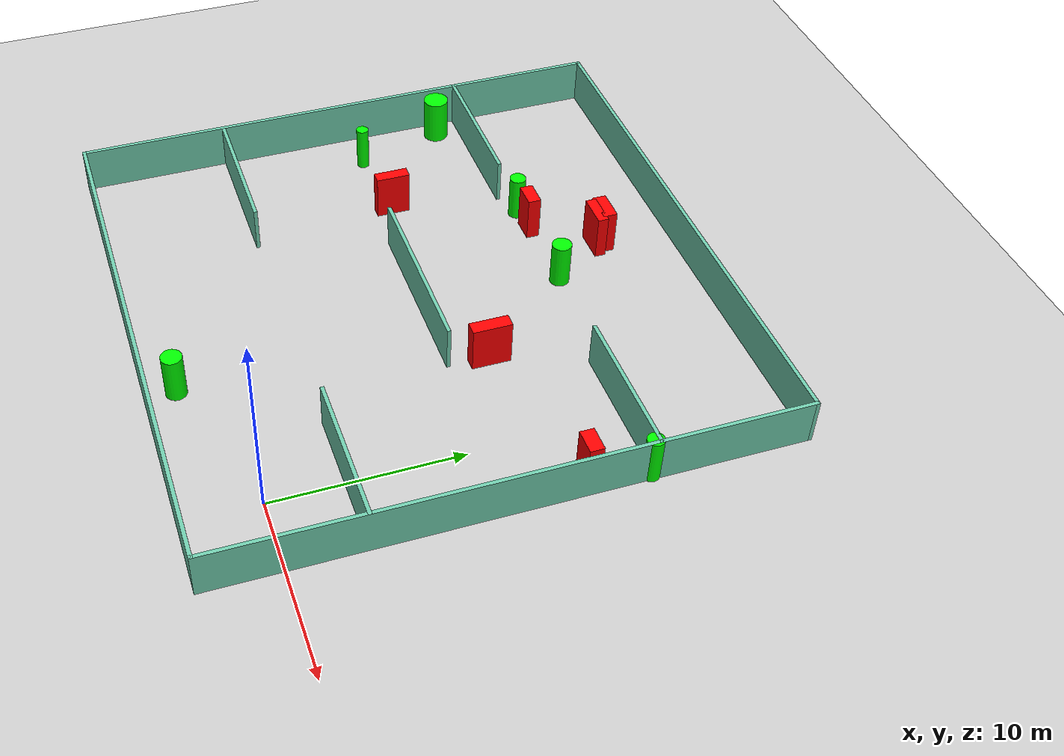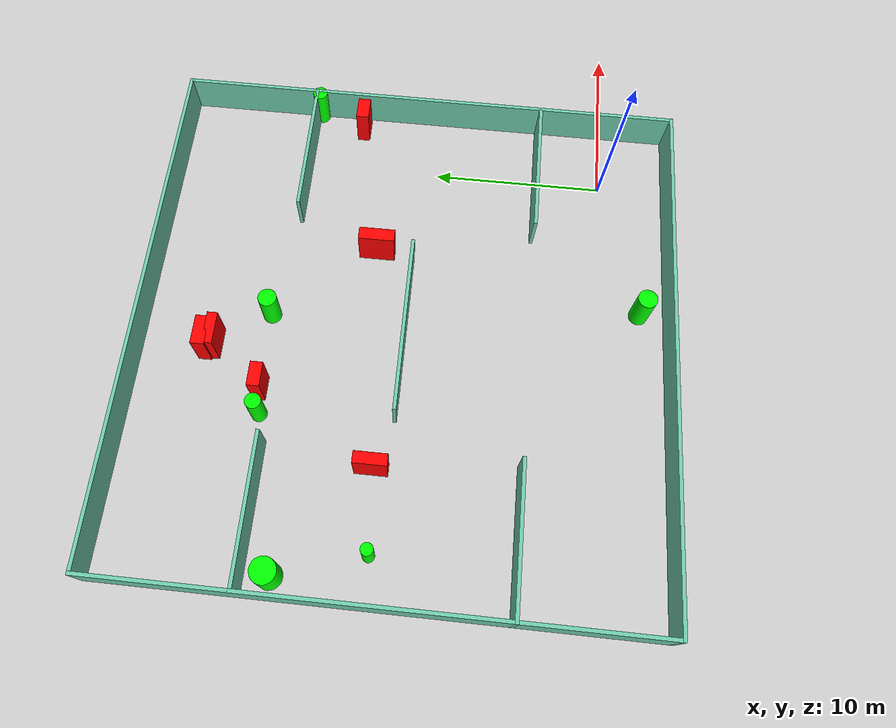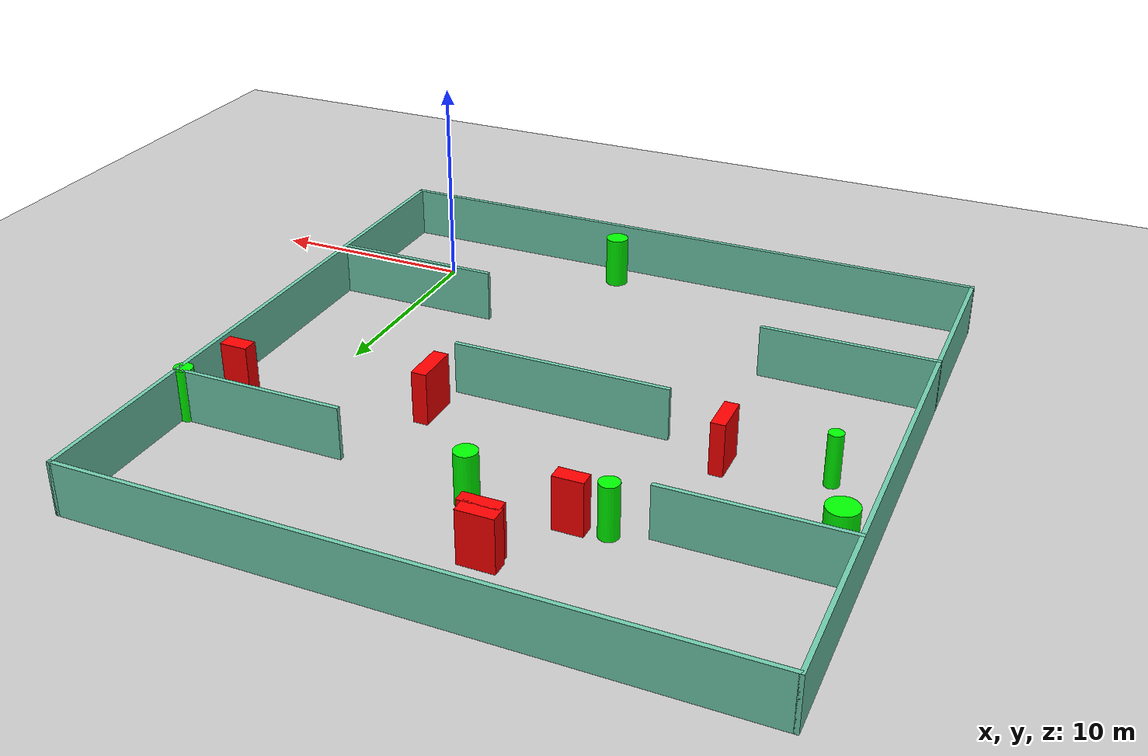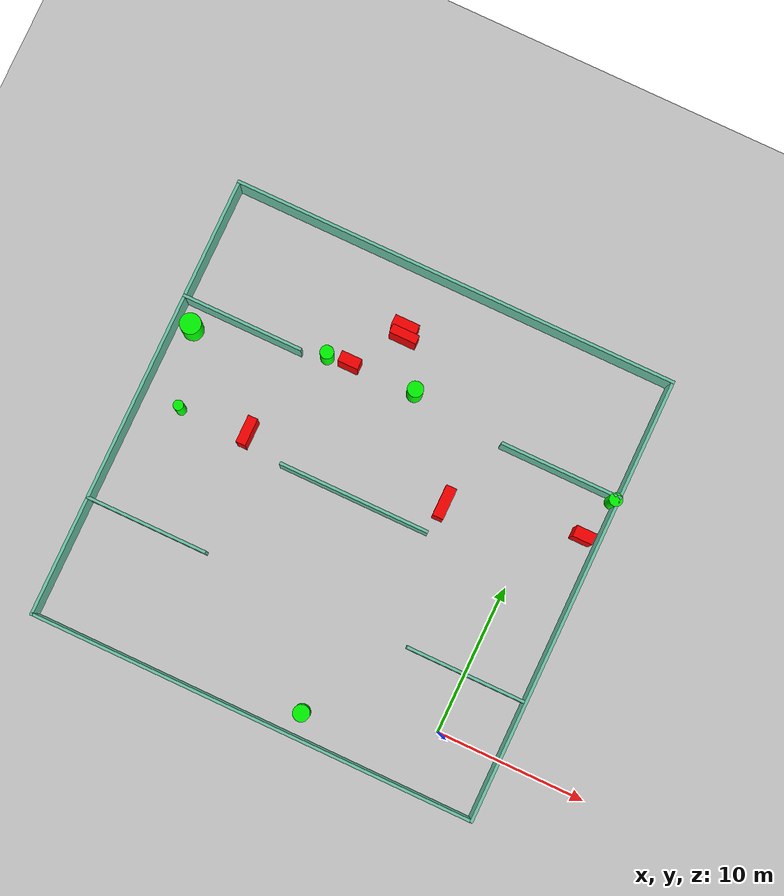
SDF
<sdf version="1.7">
 <world name="default">
  <light name="sun" type="directional">
   <pose>0 0 10 0 -0 0</pose>
   <diffuse>0.8 0.8 0.8 1</diffuse>
   <specular>0.2 0.2 0.2 1</specular>
   <attenuation>
    <range>1000</range>
    <constant>0.9</constant>
    <linear>0.01</linear>
    <quadratic>0.001</quadratic>
   </attenuation>
   <direction>-0.5 0.1 -0.9</direction>
   <spot><inner_angle>0</inner_angle><outer_angle>0</outer_angle><falloff>0</falloff></spot>
  </light>
  <model name="ground_plane">
   <static>1</static>
   <link name="link">
    <collision name="collision">
     <geometry><plane><normal>0 0 1</normal><size>100 100</size></plane></geometry>
     <surface>
      <contact><collide_bitmask>65535</collide_bitmask></contact>
      <friction><ode><mu>100</mu><mu2>50</mu2></ode></friction>
     </surface>
    </collision>
    <visual name="visual">
     <cast_shadows>0</cast_shadows>
     <geometry><plane><normal>0 0 1</normal><size>100 100</size></plane></geometry>
     <material>
      <script><uri>file://media/materials/scripts/gazebo.material</uri><name>Gazebo/Grey</name></script>
     </material>
    </visual>
   </link>
  </model>
  <gravity>0 0 -9.8</gravity>
  <magnetic_field>6e-06 2.3e-05 -4.2e-05</magnetic_field>
  <atmosphere type="adiabatic"/>
  <physics type="ode">
   <max_step_size>0.001</max_step_size>
   <real_time_factor>1</real_time_factor>
   <real_time_update_rate>1000</real_time_update_rate>
  </physics>
  <scene><ambient>0.4 0.4 0.4 1</ambient><background>0.7 0.7 0.7 1</background><shadows>1</shadows></scene>
  <spherical_coordinates>
   <surface_model>EARTH_WGS84</surface_model>
   <latitude_deg>0</latitude_deg>
   <longitude_deg>0</longitude_deg>
   <elevation>0</elevation>
   <heading_deg>0</heading_deg>
  </spherical_coordinates>
  <model name="my_base_walls">
   <link name="Wall_10">
    <collision name="Wall_10_Collision">
     <geometry><box><size>8.2 0.2 2.5</size></box></geometry>
     <pose>0 0 1.25 0 -0 0</pose>
    </collision>
    <visual name="Wall_10_Visual">
     <pose>0 0 1.25 0 -0 0</pose>
     <geometry><box><size>8.2 0.2 2.5</size></box></geometry>
     <material>
      <script><uri>file://media/materials/scripts/gazebo.material</uri><name>Gazebo/Grey</name></script>
      <ambient>0.435294 0.796078 0.67451 1</ambient>
     </material>
     <meta><layer>0</layer></meta>
    </visual>
    <pose>-11 -7 0 0 -0 0</pose>
   </link>
   <link name="Wall_12">
    <collision name="Wall_12_Collision">
     <geometry><box><size>8.2 0.2 2.5</size></box></geometry>
     <pose>0 0 1.25 0 -0 0</pose>
    </collision>
    <visual name="Wall_12_Visual">
     <pose>0 0 1.25 0 -0 0</pose>
     <geometry><box><size>8.2 0.2 2.5</size></box></geometry>
     <material>
      <script><uri>file://media/materials/scripts/gazebo.material</uri><name>Gazebo/Grey</name></script>
      <ambient>0.435294 0.796078 0.67451 1</ambient>
     </material>
     <meta><layer>0</layer></meta>
    </visual>
    <pose>-11 7 0 0 -0 0</pose>
   </link>
   <link name="Wall_14">
    <collision name="Wall_14_Collision">
     <geometry><box><size>8.2 0.2 2.5</size></box></geometry>
     <pose>0 0 1.25 0 -0 0</pose>
    </collision>
    <visual name="Wall_14_Visual">
     <pose>0 0 1.25 0 -0 0</pose>
     <geometry><box><size>8.2 0.2 2.5</size></box></geometry>
     <material>
      <script><uri>file://media/materials/scripts/gazebo.material</uri><name>Gazebo/Grey</name></script>
      <ambient>0.435294 0.796078 0.67451 1</ambient>
     </material>
     <meta><layer>0</layer></meta>
    </visual>
    <pose>11 7 0 0 -0 3.14159</pose>
   </link>
   <link name="Wall_16">
    <collision name="Wall_16_Collision">
     <geometry><box><size>10.2 0.2 2.5</size></box></geometry>
     <pose>0 0 1.25 0 -0 0</pose>
    </collision>
    <visual name="Wall_16_Visual">
     <pose>0 0 1.25 0 -0 0</pose>
     <geometry><box><size>10.2 0.2 2.5</size></box></geometry>
     <material>
      <script><uri>file://media/materials/scripts/gazebo.material</uri><name>Gazebo/Grey</name></script>
      <ambient>0.435294 0.796078 0.67451 1</ambient>
     </material>
     <meta><layer>0</layer></meta>
    </visual>
    <pose>0 0 0 0 -0 3.14159</pose>
   </link>
   <link name="Wall_2">
    <collision name="Wall_2_Collision">
     <geometry><box><size>30.2 0.2 2.5</size></box></geometry>
     <pose>0 0 1.25 0 -0 0</pose>
    </collision>
    <visual name="Wall_2_Visual">
     <pose>0 0 1.25 0 -0 0</pose>
     <geometry><box><size>30.2 0.2 2.5</size></box></geometry>
     <material>
      <script><uri>file://media/materials/scripts/gazebo.material</uri><name>Gazebo/Grey</name></script>
      <ambient>0.435294 0.796078 0.67451 1</ambient>
     </material>
     <meta><layer>0</layer></meta>
    </visual>
    <pose>0 -15 0 0 -0 3.14159</pose>
   </link>
   <link name="Wall_3">
    <collision name="Wall_3_Collision">
     <geometry><box><size>30.2 0.2 2.5</size></box></geometry>
     <pose>0 0 1.25 0 -0 0</pose>
    </collision>
    <visual name="Wall_3_Visual">
     <pose>0 0 1.25 0 -0 0</pose>
     <geometry><box><size>30.2 0.2 2.5</size></box></geometry>
     <material>
      <script><uri>file://media/materials/scripts/gazebo.material</uri><name>Gazebo/Grey</name></script>
      <ambient>0.435294 0.796078 0.67451 1</ambient>
     </material>
     <meta><layer>0</layer></meta>
    </visual>
    <pose>-15 0 0 0 -0 1.5708</pose>
   </link>
   <link name="Wall_4">
    <collision name="Wall_4_Collision">
     <geometry><box><size>30.2 0.2 2.5</size></box></geometry>
     <pose>0 0 1.25 0 -0 0</pose>
    </collision>
    <visual name="Wall_4_Visual">
     <pose>0 0 1.25 0 -0 0</pose>
     <geometry><box><size>30.2 0.2 2.5</size></box></geometry>
     <material>
      <script><uri>file://media/materials/scripts/gazebo.material</uri><name>Gazebo/Grey</name></script>
      <ambient>0.435294 0.796078 0.67451 1</ambient>
     </material>
     <meta><layer>0</layer></meta>
    </visual>
    <pose>0 15 0 0 -0 0</pose>
   </link>
   <link name="Wall_6">
    <collision name="Wall_6_Collision">
     <geometry><box><size>30.2 0.2 2.5</size></box></geometry>
     <pose>0 0 1.25 0 -0 0</pose>
    </collision>
    <visual name="Wall_6_Visual">
     <pose>0 0 1.25 0 -0 0</pose>
     <geometry><box><size>30.2 0.2 2.5</size></box></geometry>
     <material>
      <script><uri>file://media/materials/scripts/gazebo.material</uri><name>Gazebo/Grey</name></script>
      <ambient>0.435294 0.796078 0.67451 1</ambient>
     </material>
     <meta><layer>0</layer></meta>
    </visual>
    <pose>15 0 0 0 -0 1.5708</pose>
   </link>
   <link name="Wall_8">
    <collision name="Wall_8_Collision">
     <geometry><box><size>8.2 0.2 2.5</size></box></geometry>
     <pose>0 0 1.25 0 -0 0</pose>
    </collision>
    <visual name="Wall_8_Visual">
     <pose>0 0 1.25 0 -0 0</pose>
     <geometry><box><size>8.2 0.2 2.5</size></box></geometry>
     <material>
      <script><uri>file://media/materials/scripts/gazebo.material</uri><name>Gazebo/Grey</name></script>
      <ambient>0.435294 0.796078 0.67451 1</ambient>
     </material>
     <meta><layer>0</layer></meta>
    </visual>
    <pose>11 -7 0 0 -0 3.14159</pose>
   </link>
   <static>1</static>
   <pose>-11 11 0 0 -0 0</pose>
  </model>
  <model name="cylinder1">
   <static>1</static>
   <link name="link">
    <inertial>
     <mass>1</mass>
     <inertia><ixx>0.5</ixx><ixy>0</ixy><ixz>0</ixz><iyy>0.5</iyy><iyz>0</iyz><izz>1</izz></inertia>
    </inertial>
    <collision name="collision">
     <geometry><cylinder><radius>0.5269173464451953</radius><length>2.5</length></cylinder></geometry>
    </collision>
    <visual name="visual">
     <geometry><cylinder><radius>0.5269173464451953</radius><length>2.5</length></cylinder></geometry>
     <material>
      <ambient>0 1 0 1</ambient>
      <diffuse>0 1 0 1</diffuse>
      <specular>0.1 0.1 0.1 1</specular>
      <emissive>0 0 0 0</emissive>
     </material>
    </visual>
   </link>
   <pose>-10.39134898587017 18.773689727008712 1.25 0 0 0</pose>
  </model>
  <model name="cylinder2">
   <static>1</static>
   <link name="link">
    <inertial>
     <mass>1</mass>
     <inertia><ixx>0.5</ixx><ixy>0</ixy><ixz>0</ixz><iyy>0.5</iyy><iyz>0</iyz><izz>1</izz></inertia>
    </inertial>
    <collision name="collision">
     <geometry><cylinder><radius>0.4479893831734948</radius><length>2.5</length></cylinder></geometry>
    </collision>
    <visual name="visual">
     <geometry><cylinder><radius>0.4479893831734948</radius><length>2.5</length></cylinder></geometry>
     <material>
      <ambient>0 1 0 1</ambient>
      <diffuse>0 1 0 1</diffuse>
      <specular>0.1 0.1 0.1 1</specular>
      <emissive>0 0 0 0</emissive>
     </material>
    </visual>
   </link>
   <pose>-16.396823435072868 18.538221743387957 1.25 0 0 0</pose>
  </model>
  <model name="cylinder3">
   <static>1</static>
   <link name="link">
    <inertial>
     <mass>1</mass>
     <inertia><ixx>0.5</ixx><ixy>0</ixy><ixz>0</ixz><iyy>0.5</iyy><iyz>0</iyz><izz>1</izz></inertia>
    </inertial>
    <collision name="collision">
     <geometry><cylinder><radius>0.5497824195794009</radius><length>2.5</length></cylinder></geometry>
    </collision>
    <visual name="visual">
     <geometry><cylinder><radius>0.5497824195794009</radius><length>2.5</length></cylinder></geometry>
     <material>
      <ambient>0 1 0 1</ambient>
      <diffuse>0 1 0 1</diffuse>
      <specular>0.1 0.1 0.1 1</specular>
      <emissive>0 0 0 0</emissive>
     </material>
    </visual>
   </link>
   <pose>-8.28124869401463 -2.452670198257613 1.25 0 0 0</pose>
  </model>
  <model name="cylinder4">
   <static>1</static>
   <link name="link">
    <inertial>
     <mass>1</mass>
     <inertia><ixx>0.5</ixx><ixy>0</ixy><ixz>0</ixz><iyy>0.5</iyy><iyz>0</iyz><izz>1</izz></inertia>
    </inertial>
    <collision name="collision">
     <geometry><cylinder><radius>0.4375071835727691</radius><length>2.5</length></cylinder></geometry>
    </collision>
    <visual name="visual">
     <geometry><cylinder><radius>0.4375071835727691</radius><length>2.5</length></cylinder></geometry>
     <material>
      <ambient>0 1 0 1</ambient>
      <diffuse>0 1 0 1</diffuse>
      <specular>0.1 0.1 0.1 1</specular>
      <emissive>0 0 0 0</emissive>
     </material>
    </visual>
   </link>
   <pose>3.815668477420445 17.790078796323563 1.25 0 0 0</pose>
  </model>
  <model name="cylinder5">
   <static>1</static>
   <link name="link">
    <inertial>
     <mass>1</mass>
     <inertia><ixx>0.5</ixx><ixy>0</ixy><ixz>0</ixz><iyy>0.5</iyy><iyz>0</iyz><izz>1</izz></inertia>
    </inertial>
    <collision name="collision">
     <geometry><cylinder><radius>0.33856931285706326</radius><length>2.5</length></cylinder></geometry>
    </collision>
    <visual name="visual">
     <geometry><cylinder><radius>0.33856931285706326</radius><length>2.5</length></cylinder></geometry>
     <material>
      <ambient>0 1 0 1</ambient>
      <diffuse>0 1 0 1</diffuse>
      <specular>0.1 0.1 0.1 1</specular>
      <emissive>0 0 0 0</emissive>
     </material>
    </visual>
   </link>
   <pose>-23.374753256911028 11.581452212960631 1.25 0 0 0</pose>
  </model>
  <model name="cylinder6">
   <static>1</static>
   <link name="link">
    <inertial>
     <mass>1</mass>
     <inertia><ixx>0.5</ixx><ixy>0</ixy><ixz>0</ixz><iyy>0.5</iyy><iyz>0</iyz><izz>1</izz></inertia>
    </inertial>
    <collision name="collision">
     <geometry><cylinder><radius>0.6989576460759608</radius><length>2.5</length></cylinder></geometry>
    </collision>
    <visual name="visual">
     <geometry><cylinder><radius>0.6989576460759608</radius><length>2.5</length></cylinder></geometry>
     <material>
      <ambient>0 1 0 1</ambient>
      <diffuse>0 1 0 1</diffuse>
      <specular>0.1 0.1 0.1 1</specular>
      <emissive>0 0 0 0</emissive>
     </material>
    </visual>
   </link>
   <pose>-24.89868392240857 16.542516539786227 1.25 0 0 0</pose>
  </model>
  <model name="box1">
   <static>1</static>
   <link name="link">
    <inertial>
     <mass>1</mass>
     <inertia><ixx>0.083</ixx><ixy>0</ixy><ixz>0</ixz><iyy>0.083</iyy><iyz>0</iyz><izz>0.083</izz></inertia>
    </inertial>
    <collision name="collision">
     <geometry><box><size>1.3644573072018025 0.7066734741767587 2.5</size></box></geometry>
    </collision>
    <visual name="visual">
     <geometry><box><size>1.3644573072018025 0.7066734741767587 2.5</size></box></geometry>
     <material>
      <ambient>1 0 0 1</ambient>
      <diffuse>1 0 0 1</diffuse>
      <specular>0.1 0.1 0.1 1</specular>
      <emissive>0 0 0 0</emissive>
     </material>
    </visual>
    <sensor name="my_contact" type="contact">
     <contact><collision>box_collision</collision><topic>__default_topic__</topic></contact>
    </sensor>
   </link>
   <pose>-14.88147535801615 18.699837626220038 1.25 0 0 0</pose>
  </model>
  <model name="box2">
   <static>1</static>
   <link name="link">
    <inertial>
     <mass>1</mass>
     <inertia><ixx>0.083</ixx><ixy>0</ixy><ixz>0</ixz><iyy>0.083</iyy><iyz>0</iyz><izz>0.083</izz></inertia>
    </inertial>
    <collision name="collision">
     <geometry><box><size>1.6722336609887807 0.7744962250164108 2.5</size></box></geometry>
    </collision>
    <visual name="visual">
     <geometry><box><size>1.6722336609887807 0.7744962250164108 2.5</size></box></geometry>
     <material>
      <ambient>1 0 0 1</ambient>
      <diffuse>1 0 0 1</diffuse>
      <specular>0.1 0.1 0.1 1</specular>
      <emissive>0 0 0 0</emissive>
     </material>
    </visual>
    <sensor name="my_contact" type="contact">
     <contact><collision>box_collision</collision><topic>__default_topic__</topic></contact>
    </sensor>
   </link>
   <pose>-12.661259305222988 22.151739070405466 1.25 0 0 0</pose>
  </model>
  <model name="box3">
   <static>1</static>
   <link name="link">
    <inertial>
     <mass>1</mass>
     <inertia><ixx>0.083</ixx><ixy>0</ixy><ixz>0</ixz><iyy>0.083</iyy><iyz>0</iyz><izz>0.083</izz></inertia>
    </inertial>
    <collision name="collision">
     <geometry><box><size>0.7254108943037691 2.085492129144419 2.5</size></box></geometry>
    </collision>
    <visual name="visual">
     <geometry><box><size>0.7254108943037691 2.085492129144419 2.5</size></box></geometry>
     <material>
      <ambient>1 0 0 1</ambient>
      <diffuse>1 0 0 1</diffuse>
      <specular>0.1 0.1 0.1 1</specular>
      <emissive>0 0 0 0</emissive>
     </material>
    </visual>
    <sensor name="my_contact" type="contact">
     <contact><collision>box_collision</collision><topic>__default_topic__</topic></contact>
    </sensor>
   </link>
   <pose>-5.753937517842971 13.135034578512919 1.25 0 0 0</pose>
  </model>
  <model name="box4">
   <static>1</static>
   <link name="link">
    <inertial>
     <mass>1</mass>
     <inertia><ixx>0.083</ixx><ixy>0</ixy><ixz>0</ixz><iyy>0.083</iyy><iyz>0</iyz><izz>0.083</izz></inertia>
    </inertial>
    <collision name="collision">
     <geometry><box><size>0.6449754775010925 1.8536021414597297 2.5</size></box></geometry>
    </collision>
    <visual name="visual">
     <geometry><box><size>0.6449754775010925 1.8536021414597297 2.5</size></box></geometry>
     <material>
      <ambient>1 0 0 1</ambient>
      <diffuse>1 0 0 1</diffuse>
      <specular>0.1 0.1 0.1 1</specular>
      <emissive>0 0 0 0</emissive>
     </material>
    </visual>
    <sensor name="my_contact" type="contact">
     <contact><collision>box_collision</collision><topic>__default_topic__</topic></contact>
    </sensor>
   </link>
   <pose>-18.829398388611253 11.964934745909966 1.25 0 0 0</pose>
  </model>
  <model name="box5">
   <static>1</static>
   <link name="link">
    <inertial>
     <mass>1</mass>
     <inertia><ixx>0.083</ixx><ixy>0</ixy><ixz>0</ixz><iyy>0.083</iyy><iyz>0</iyz><izz>0.083</izz></inertia>
    </inertial>
    <collision name="collision">
     <geometry><box><size>1.815321210099048 0.5856197741521998 2.5</size></box></geometry>
    </collision>
    <visual name="visual">
     <geometry><box><size>1.815321210099048 0.5856197741521998 2.5</size></box></geometry>
     <material>
      <ambient>1 0 0 1</ambient>
      <diffuse>1 0 0 1</diffuse>
      <specular>0.1 0.1 0.1 1</specular>
      <emissive>0 0 0 0</emissive>
     </material>
    </visual>
    <sensor name="my_contact" type="contact">
     <contact><collision>box_collision</collision><topic>__default_topic__</topic></contact>
    </sensor>
   </link>
   <pose>-12.486100501010592 21.641599802429653 1.25 0 0 0</pose>
  </model>
  <model name="box6">
   <static>1</static>
   <link name="link">
    <inertial>
     <mass>1</mass>
     <inertia><ixx>0.083</ixx><ixy>0</ixy><ixz>0</ixz><iyy>0.083</iyy><iyz>0</iyz><izz>0.083</izz></inertia>
    </inertial>
    <collision name="collision">
     <geometry><box><size>1.3287116685156724 0.7490678369502194 2.5</size></box></geometry>
    </collision>
    <visual name="visual">
     <geometry><box><size>1.3287116685156724 0.7490678369502194 2.5</size></box></geometry>
     <material>
      <ambient>1 0 0 1</ambient>
      <diffuse>1 0 0 1</diffuse>
      <specular>0.1 0.1 0.1 1</specular>
      <emissive>0 0 0 0</emissive>
     </material>
    </visual>
    <sensor name="my_contact" type="contact">
     <contact><collision>box_collision</collision><topic>__default_topic__</topic></contact>
    </sensor>
   </link>
   <pose>2.973701333481948 14.961688453937654 1.25 0 0 0</pose>
  </model>
 </world>
</sdf>
